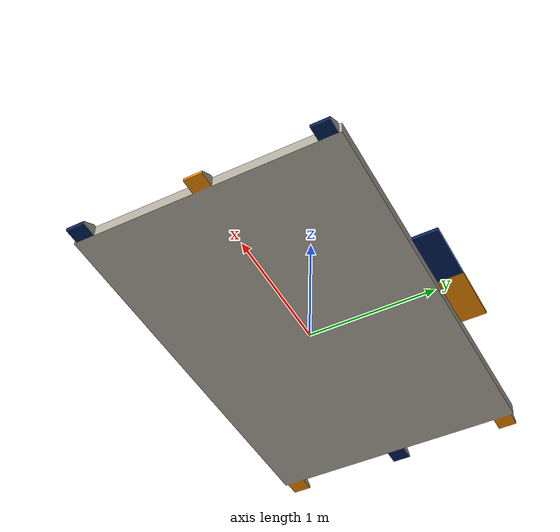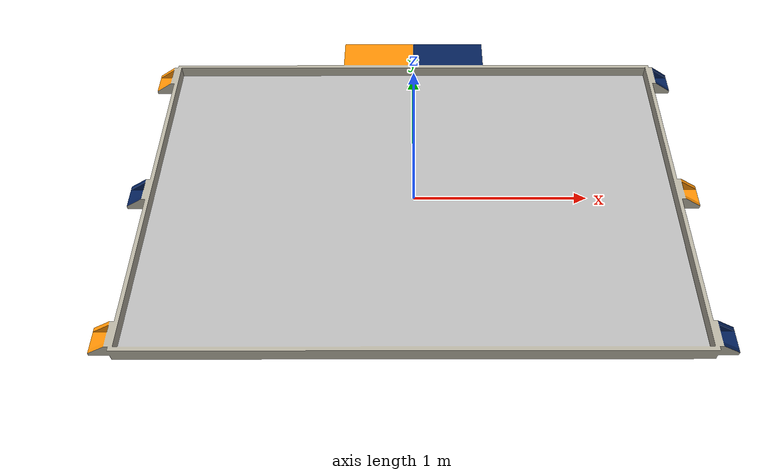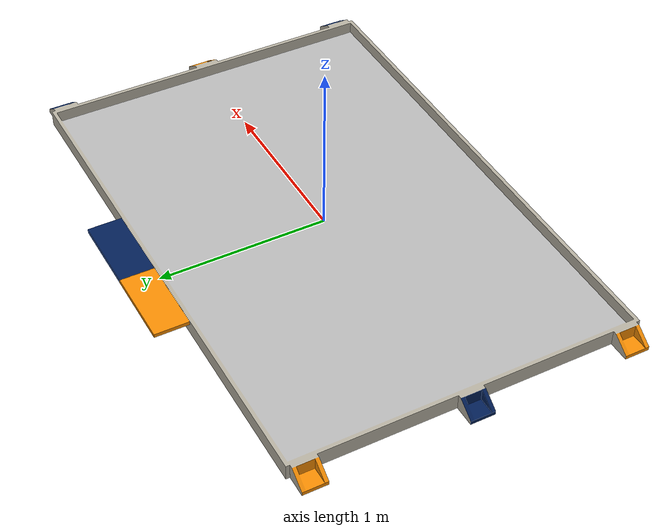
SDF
<?xml version='1.0'?>
<sdf version='1.7'>
    <model name='board'>
        <link name='link_0'>
            <pose>0 0 0 0 -0 0</pose>
            <gravity>1</gravity>
            <self_collide>0</self_collide>
            <kinematic>0</kinematic>
            <enable_wind>0</enable_wind>
            <visual name='visual'>
                <pose>0 0 0 0 0 0</pose>
                <geometry>
                    <mesh>
                        <uri>model://board/meshes/board.dae</uri>
                        <scale>1 1 1</scale>
                    </mesh>
                </geometry>
                <transparency>0</transparency>
                <cast_shadows>1</cast_shadows>
            </visual>
            <collision name='collision'>
                <laser_retro>0</laser_retro>
                <max_contacts>10</max_contacts>
                <pose>0 0 0 0 0 0</pose>
                <geometry>
                    <mesh>
                        <uri>model://board/meshes/board.dae</uri>
                        <scale>1 1 1</scale>
                    </mesh>
                </geometry>
            </collision>
        </link>
        <static>1</static>
        <allow_auto_disable>1</allow_auto_disable>
    </model>
</sdf>
